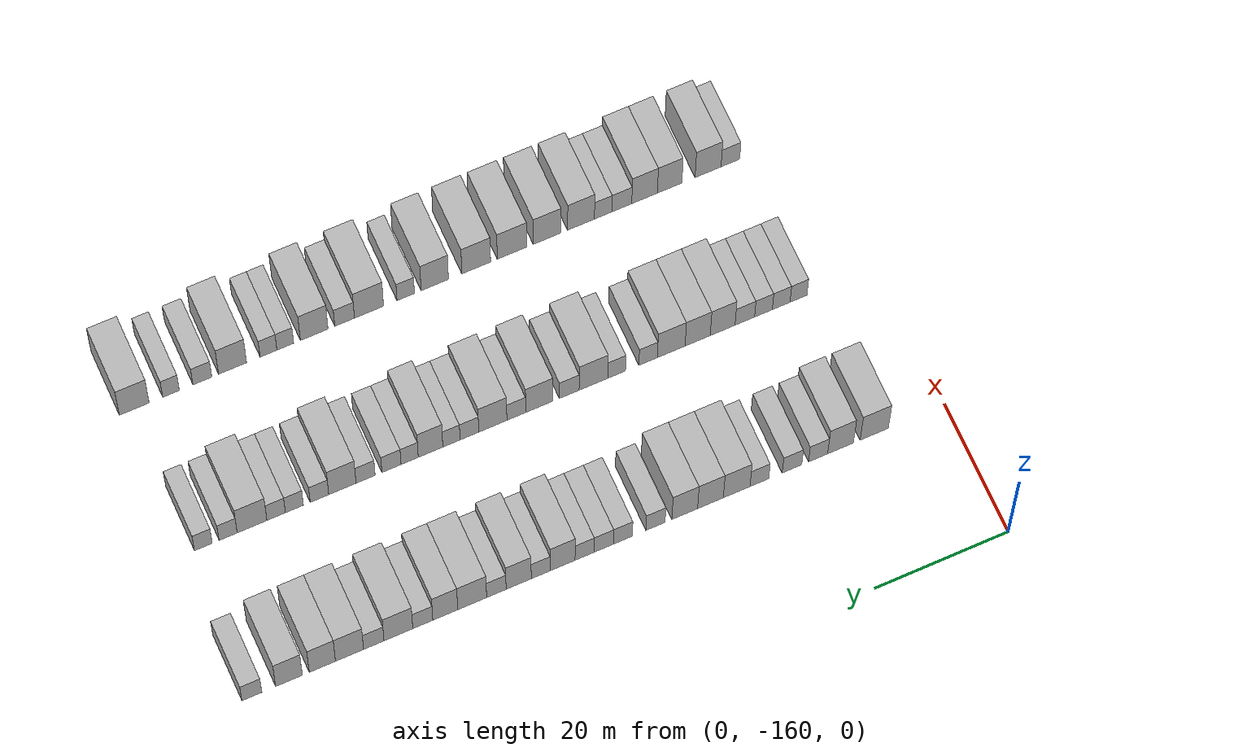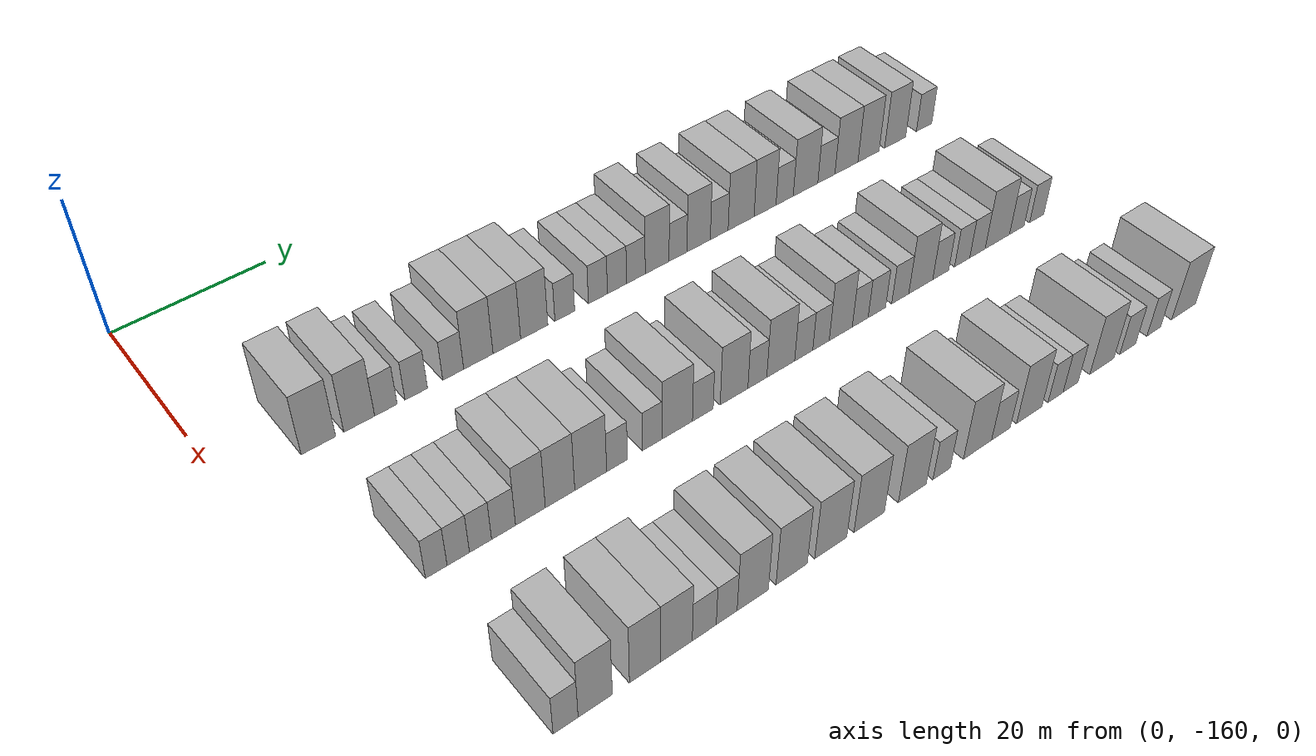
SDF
<sdf version="1.6">
 <world name="default">
  <model name="building_25">
   <static>1</static>
   <pose>25.0000 -149.3242 0 0.000000 0.000000 0.000000</pose>
   <link name="link">
    <pose>0 0 4.50 0 0 0</pose>
    <collision name="collision"><geometry><box><size>10.0000 4.2054 9.0000</size></box></geometry></collision>
    <visual name="visual">
     <cast_shadows>0</cast_shadows>
     <geometry><box><size>10.0000 4.2054 9.0000</size></box></geometry>
     <material>
      <script>
       <uri>model://HANNAS_wall/materials/scripts</uri>
       <uri>model://HANNAS_wall/materials/textures</uri>
       <name>vrc/HANNAS_wall</name>
      </script>
     </material>
    </visual>
   </link>
  </model>
  <model name="building_26">
   <static>1</static>
   <pose>25.0000 -144.2968 0 0.000000 0.000000 0.000000</pose>
   <link name="link">
    <pose>0 0 4.50 0 0 0</pose>
    <collision name="collision"><geometry><box><size>10.0000 3.8493 9.0000</size></box></geometry></collision>
    <visual name="visual">
     <cast_shadows>0</cast_shadows>
     <geometry><box><size>10.0000 3.8493 9.0000</size></box></geometry>
     <material>
      <script>
       <uri>model://HANNAS_wall/materials/scripts</uri>
       <uri>model://HANNAS_wall/materials/textures</uri>
       <name>vrc/HANNAS_wall</name>
      </script>
     </material>
    </visual>
   </link>
  </model>
  <model name="building_27">
   <static>1</static>
   <pose>25.0000 -140.9447 0 0.000000 0.000000 0.000000</pose>
   <link name="link">
    <pose>0 0 3.00 0 0 0</pose>
    <collision name="collision"><geometry><box><size>10.0000 2.8551 6.0000</size></box></geometry></collision>
    <visual name="visual">
     <cast_shadows>0</cast_shadows>
     <geometry><box><size>10.0000 2.8551 6.0000</size></box></geometry>
     <material>
      <script>
       <uri>model://HANNAS_wall/materials/scripts</uri>
       <uri>model://HANNAS_wall/materials/textures</uri>
       <name>vrc/HANNAS_wall</name>
      </script>
     </material>
    </visual>
   </link>
  </model>
  <model name="building_28">
   <static>1</static>
   <pose>25.0000 -137.0602 0 0.000000 0.000000 0.000000</pose>
   <link name="link">
    <pose>0 0 3.00 0 0 0</pose>
    <collision name="collision"><geometry><box><size>10.0000 2.9138 6.0000</size></box></geometry></collision>
    <visual name="visual">
     <cast_shadows>0</cast_shadows>
     <geometry><box><size>10.0000 2.9138 6.0000</size></box></geometry>
     <material>
      <script>
       <uri>model://HANNAS_wall/materials/scripts</uri>
       <uri>model://HANNAS_wall/materials/textures</uri>
       <name>vrc/HANNAS_wall</name>
      </script>
     </material>
    </visual>
   </link>
  </model>
  <model name="building_29">
   <static>1</static>
   <pose>25.0000 -132.2127 0 0.000000 0.000000 0.000000</pose>
   <link name="link">
    <pose>0 0 3.00 0 0 0</pose>
    <collision name="collision"><geometry><box><size>10.0000 2.7813 6.0000</size></box></geometry></collision>
    <visual name="visual">
     <cast_shadows>0</cast_shadows>
     <geometry><box><size>10.0000 2.7813 6.0000</size></box></geometry>
     <material>
      <script>
       <uri>model://HANNAS_wall/materials/scripts</uri>
       <uri>model://HANNAS_wall/materials/textures</uri>
       <name>vrc/HANNAS_wall</name>
      </script>
     </material>
    </visual>
   </link>
  </model>
  <model name="building_30">
   <static>1</static>
   <pose>25.0000 -128.8411 0 0.000000 0.000000 0.000000</pose>
   <link name="link">
    <pose>0 0 4.50 0 0 0</pose>
    <collision name="collision"><geometry><box><size>10.0000 3.9619 9.0000</size></box></geometry></collision>
    <visual name="visual">
     <cast_shadows>0</cast_shadows>
     <geometry><box><size>10.0000 3.9619 9.0000</size></box></geometry>
     <material>
      <script>
       <uri>model://HANNAS_wall/materials/scripts</uri>
       <uri>model://HANNAS_wall/materials/textures</uri>
       <name>vrc/HANNAS_wall</name>
      </script>
     </material>
    </visual>
   </link>
  </model>
  <model name="building_31">
   <static>1</static>
   <pose>25.0000 -124.9556 0 0.000000 0.000000 0.000000</pose>
   <link name="link">
    <pose>0 0 4.50 0 0 0</pose>
    <collision name="collision"><geometry><box><size>10.0000 3.8092 9.0000</size></box></geometry></collision>
    <visual name="visual">
     <cast_shadows>0</cast_shadows>
     <geometry><box><size>10.0000 3.8092 9.0000</size></box></geometry>
     <material>
      <script>
       <uri>model://HANNAS_wall/materials/scripts</uri>
       <uri>model://HANNAS_wall/materials/textures</uri>
       <name>vrc/HANNAS_wall</name>
      </script>
     </material>
    </visual>
   </link>
  </model>
  <model name="building_32">
   <static>1</static>
   <pose>25.0000 -121.1443 0 0.000000 0.000000 0.000000</pose>
   <link name="link">
    <pose>0 0 4.50 0 0 0</pose>
    <collision name="collision"><geometry><box><size>10.0000 3.8134 9.0000</size></box></geometry></collision>
    <visual name="visual">
     <cast_shadows>0</cast_shadows>
     <geometry><box><size>10.0000 3.8134 9.0000</size></box></geometry>
     <material>
      <script>
       <uri>model://HANNAS_wall/materials/scripts</uri>
       <uri>model://HANNAS_wall/materials/textures</uri>
       <name>vrc/HANNAS_wall</name>
      </script>
     </material>
    </visual>
   </link>
  </model>
  <model name="building_33">
   <static>1</static>
   <pose>25.0000 -116.8206 0 0.000000 0.000000 0.000000</pose>
   <link name="link">
    <pose>0 0 3.00 0 0 0</pose>
    <collision name="collision"><geometry><box><size>10.0000 2.8338 6.0000</size></box></geometry></collision>
    <visual name="visual">
     <cast_shadows>0</cast_shadows>
     <geometry><box><size>10.0000 2.8338 6.0000</size></box></geometry>
     <material>
      <script>
       <uri>model://HANNAS_wall/materials/scripts</uri>
       <uri>model://HANNAS_wall/materials/textures</uri>
       <name>vrc/HANNAS_wall</name>
      </script>
     </material>
    </visual>
   </link>
  </model>
  <model name="building_34">
   <static>1</static>
   <pose>25.0000 -112.0106 0 0.000000 0.000000 0.000000</pose>
   <link name="link">
    <pose>0 0 3.00 0 0 0</pose>
    <collision name="collision"><geometry><box><size>10.0000 2.7863 6.0000</size></box></geometry></collision>
    <visual name="visual">
     <cast_shadows>0</cast_shadows>
     <geometry><box><size>10.0000 2.7863 6.0000</size></box></geometry>
     <material>
      <script>
       <uri>model://HANNAS_wall/materials/scripts</uri>
       <uri>model://HANNAS_wall/materials/textures</uri>
       <name>vrc/HANNAS_wall</name>
      </script>
     </material>
    </visual>
   </link>
  </model>
  <model name="building_35">
   <static>1</static>
   <pose>25.0000 -109.1932 0 0.000000 0.000000 0.000000</pose>
   <link name="link">
    <pose>0 0 3.00 0 0 0</pose>
    <collision name="collision"><geometry><box><size>10.0000 2.8485 6.0000</size></box></geometry></collision>
    <visual name="visual">
     <cast_shadows>0</cast_shadows>
     <geometry><box><size>10.0000 2.8485 6.0000</size></box></geometry>
     <material>
      <script>
       <uri>model://HANNAS_wall/materials/scripts</uri>
       <uri>model://HANNAS_wall/materials/textures</uri>
       <name>vrc/HANNAS_wall</name>
      </script>
     </material>
    </visual>
   </link>
  </model>
  <model name="building_36">
   <static>1</static>
   <pose>25.0000 -106.3663 0 0.000000 0.000000 0.000000</pose>
   <link name="link">
    <pose>0 0 3.00 0 0 0</pose>
    <collision name="collision"><geometry><box><size>10.0000 2.8053 6.0000</size></box></geometry></collision>
    <visual name="visual">
     <cast_shadows>0</cast_shadows>
     <geometry><box><size>10.0000 2.8053 6.0000</size></box></geometry>
     <material>
      <script>
       <uri>model://HANNAS_wall/materials/scripts</uri>
       <uri>model://HANNAS_wall/materials/textures</uri>
       <name>vrc/HANNAS_wall</name>
      </script>
     </material>
    </visual>
   </link>
  </model>
  <model name="building_37">
   <static>1</static>
   <pose>25.0000 -103.1372 0 0.000000 0.000000 0.000000</pose>
   <link name="link">
    <pose>0 0 4.50 0 0 0</pose>
    <collision name="collision"><geometry><box><size>10.0000 3.6528 9.0000</size></box></geometry></collision>
    <visual name="visual">
     <cast_shadows>0</cast_shadows>
     <geometry><box><size>10.0000 3.6528 9.0000</size></box></geometry>
     <material>
      <script>
       <uri>model://HANNAS_wall/materials/scripts</uri>
       <uri>model://HANNAS_wall/materials/textures</uri>
       <name>vrc/HANNAS_wall</name>
      </script>
     </material>
    </visual>
   </link>
  </model>
  <model name="building_38">
   <static>1</static>
   <pose>25.0000 -99.9185 0 0.000000 0.000000 0.000000</pose>
   <link name="link">
    <pose>0 0 3.00 0 0 0</pose>
    <collision name="collision"><geometry><box><size>10.0000 2.7847 6.0000</size></box></geometry></collision>
    <visual name="visual">
     <cast_shadows>0</cast_shadows>
     <geometry><box><size>10.0000 2.7847 6.0000</size></box></geometry>
     <material>
      <script>
       <uri>model://HANNAS_wall/materials/scripts</uri>
       <uri>model://HANNAS_wall/materials/textures</uri>
       <name>vrc/HANNAS_wall</name>
      </script>
     </material>
    </visual>
   </link>
  </model>
  <model name="building_39">
   <static>1</static>
   <pose>25.0000 -96.6816 0 0.000000 0.000000 0.000000</pose>
   <link name="link">
    <pose>0 0 4.50 0 0 0</pose>
    <collision name="collision"><geometry><box><size>10.0000 3.6890 9.0000</size></box></geometry></collision>
    <visual name="visual">
     <cast_shadows>0</cast_shadows>
     <geometry><box><size>10.0000 3.6890 9.0000</size></box></geometry>
     <material>
      <script>
       <uri>model://HANNAS_wall/materials/scripts</uri>
       <uri>model://HANNAS_wall/materials/textures</uri>
       <name>vrc/HANNAS_wall</name>
      </script>
     </material>
    </visual>
   </link>
  </model>
  <model name="building_40">
   <static>1</static>
   <pose>25.0000 -93.4122 0 0.000000 0.000000 0.000000</pose>
   <link name="link">
    <pose>0 0 3.00 0 0 0</pose>
    <collision name="collision"><geometry><box><size>10.0000 2.8499 6.0000</size></box></geometry></collision>
    <visual name="visual">
     <cast_shadows>0</cast_shadows>
     <geometry><box><size>10.0000 2.8499 6.0000</size></box></geometry>
     <material>
      <script>
       <uri>model://HANNAS_wall/materials/scripts</uri>
       <uri>model://HANNAS_wall/materials/textures</uri>
       <name>vrc/HANNAS_wall</name>
      </script>
     </material>
    </visual>
   </link>
  </model>
  <model name="building_41">
   <static>1</static>
   <pose>25.0000 -89.8709 0 0.000000 0.000000 0.000000</pose>
   <link name="link">
    <pose>0 0 4.50 0 0 0</pose>
    <collision name="collision"><geometry><box><size>10.0000 4.2328 9.0000</size></box></geometry></collision>
    <visual name="visual">
     <cast_shadows>0</cast_shadows>
     <geometry><box><size>10.0000 4.2328 9.0000</size></box></geometry>
     <material>
      <script>
       <uri>model://HANNAS_wall/materials/scripts</uri>
       <uri>model://HANNAS_wall/materials/textures</uri>
       <name>vrc/HANNAS_wall</name>
      </script>
     </material>
    </visual>
   </link>
  </model>
  <model name="building_42">
   <static>1</static>
   <pose>25.0000 -85.9363 0 0.000000 0.000000 0.000000</pose>
   <link name="link">
    <pose>0 0 4.50 0 0 0</pose>
    <collision name="collision"><geometry><box><size>10.0000 3.6364 9.0000</size></box></geometry></collision>
    <visual name="visual">
     <cast_shadows>0</cast_shadows>
     <geometry><box><size>10.0000 3.6364 9.0000</size></box></geometry>
     <material>
      <script>
       <uri>model://HANNAS_wall/materials/scripts</uri>
       <uri>model://HANNAS_wall/materials/textures</uri>
       <name>vrc/HANNAS_wall</name>
      </script>
     </material>
    </visual>
   </link>
  </model>
  <model name="building_43">
   <static>1</static>
   <pose>25.0000 -82.6606 0 0.000000 0.000000 0.000000</pose>
   <link name="link">
    <pose>0 0 3.00 0 0 0</pose>
    <collision name="collision"><geometry><box><size>10.0000 2.9150 6.0000</size></box></geometry></collision>
    <visual name="visual">
     <cast_shadows>0</cast_shadows>
     <geometry><box><size>10.0000 2.9150 6.0000</size></box></geometry>
     <material>
      <script>
       <uri>model://HANNAS_wall/materials/scripts</uri>
       <uri>model://HANNAS_wall/materials/textures</uri>
       <name>vrc/HANNAS_wall</name>
      </script>
     </material>
    </visual>
   </link>
  </model>
  <model name="building_44">
   <static>1</static>
   <pose>25.0000 -79.1038 0 0.000000 0.000000 0.000000</pose>
   <link name="link">
    <pose>0 0 4.50 0 0 0</pose>
    <collision name="collision"><geometry><box><size>10.0000 4.1987 9.0000</size></box></geometry></collision>
    <visual name="visual">
     <cast_shadows>0</cast_shadows>
     <geometry><box><size>10.0000 4.1987 9.0000</size></box></geometry>
     <material>
      <script>
       <uri>model://HANNAS_wall/materials/scripts</uri>
       <uri>model://HANNAS_wall/materials/textures</uri>
       <name>vrc/HANNAS_wall</name>
      </script>
     </material>
    </visual>
   </link>
  </model>
  <model name="building_45">
   <static>1</static>
   <pose>25.0000 -75.5194 0 0.000000 0.000000 0.000000</pose>
   <link name="link">
    <pose>0 0 3.00 0 0 0</pose>
    <collision name="collision"><geometry><box><size>10.0000 2.9702 6.0000</size></box></geometry></collision>
    <visual name="visual">
     <cast_shadows>0</cast_shadows>
     <geometry><box><size>10.0000 2.9702 6.0000</size></box></geometry>
     <material>
      <script>
       <uri>model://HANNAS_wall/materials/scripts</uri>
       <uri>model://HANNAS_wall/materials/textures</uri>
       <name>vrc/HANNAS_wall</name>
      </script>
     </material>
    </visual>
   </link>
  </model>
  <model name="building_46">
   <static>1</static>
   <pose>25.0000 -71.9935 0 0.000000 0.000000 0.000000</pose>
   <link name="link">
    <pose>0 0 4.50 0 0 0</pose>
    <collision name="collision"><geometry><box><size>10.0000 4.0816 9.0000</size></box></geometry></collision>
    <visual name="visual">
     <cast_shadows>0</cast_shadows>
     <geometry><box><size>10.0000 4.0816 9.0000</size></box></geometry>
     <material>
      <script>
       <uri>model://HANNAS_wall/materials/scripts</uri>
       <uri>model://HANNAS_wall/materials/textures</uri>
       <name>vrc/HANNAS_wall</name>
      </script>
     </material>
    </visual>
   </link>
  </model>
  <model name="building_47">
   <static>1</static>
   <pose>25.0000 -68.0510 0 0.000000 0.000000 0.000000</pose>
   <link name="link">
    <pose>0 0 4.50 0 0 0</pose>
    <collision name="collision"><geometry><box><size>10.0000 3.8034 9.0000</size></box></geometry></collision>
    <visual name="visual">
     <cast_shadows>0</cast_shadows>
     <geometry><box><size>10.0000 3.8034 9.0000</size></box></geometry>
     <material>
      <script>
       <uri>model://HANNAS_wall/materials/scripts</uri>
       <uri>model://HANNAS_wall/materials/textures</uri>
       <name>vrc/HANNAS_wall</name>
      </script>
     </material>
    </visual>
   </link>
  </model>
  <model name="building_48">
   <static>1</static>
   <pose>25.0000 -63.2128 0 0.000000 0.000000 0.000000</pose>
   <link name="link">
    <pose>0 0 4.50 0 0 0</pose>
    <collision name="collision"><geometry><box><size>10.0000 3.8730 9.0000</size></box></geometry></collision>
    <visual name="visual">
     <cast_shadows>0</cast_shadows>
     <geometry><box><size>10.0000 3.8730 9.0000</size></box></geometry>
     <material>
      <script>
       <uri>model://HANNAS_wall/materials/scripts</uri>
       <uri>model://HANNAS_wall/materials/textures</uri>
       <name>vrc/HANNAS_wall</name>
      </script>
     </material>
    </visual>
   </link>
  </model>
  <model name="building_49">
   <static>1</static>
   <pose>25.0000 -57.8368 0 0.000000 0.000000 0.000000</pose>
   <link name="link">
    <pose>0 0 3.00 0 0 0</pose>
    <collision name="collision"><geometry><box><size>10.0000 2.8790 6.0000</size></box></geometry></collision>
    <visual name="visual">
     <cast_shadows>0</cast_shadows>
     <geometry><box><size>10.0000 2.8790 6.0000</size></box></geometry>
     <material>
      <script>
       <uri>model://HANNAS_wall/materials/scripts</uri>
       <uri>model://HANNAS_wall/materials/textures</uri>
       <name>vrc/HANNAS_wall</name>
      </script>
     </material>
    </visual>
   </link>
  </model>
  <model name="building_150">
   <static>1</static>
   <pose>47.0000 -148.1865 0 0.000000 0.000000 0.000000</pose>
   <link name="link">
    <pose>0 0 3.00 0 0 0</pose>
    <collision name="collision"><geometry><box><size>10.0000 2.5449 6.0000</size></box></geometry></collision>
    <visual name="visual">
     <cast_shadows>0</cast_shadows>
     <geometry><box><size>10.0000 2.5449 6.0000</size></box></geometry>
     <material>
      <script>
       <uri>model://HANNAS_wall/materials/scripts</uri>
       <uri>model://HANNAS_wall/materials/textures</uri>
       <name>vrc/HANNAS_wall</name>
      </script>
     </material>
    </visual>
   </link>
  </model>
  <model name="building_151">
   <static>1</static>
   <pose>47.0000 -145.5864 0 0.000000 0.000000 0.000000</pose>
   <link name="link">
    <pose>0 0 3.00 0 0 0</pose>
    <collision name="collision"><geometry><box><size>10.0000 2.6553 6.0000</size></box></geometry></collision>
    <visual name="visual">
     <cast_shadows>0</cast_shadows>
     <geometry><box><size>10.0000 2.6553 6.0000</size></box></geometry>
     <material>
      <script>
       <uri>model://HANNAS_wall/materials/scripts</uri>
       <uri>model://HANNAS_wall/materials/textures</uri>
       <name>vrc/HANNAS_wall</name>
      </script>
     </material>
    </visual>
   </link>
  </model>
  <model name="building_152">
   <static>1</static>
   <pose>47.0000 -142.9278 0 0.000000 0.000000 0.000000</pose>
   <link name="link">
    <pose>0 0 3.00 0 0 0</pose>
    <collision name="collision"><geometry><box><size>10.0000 2.6617 6.0000</size></box></geometry></collision>
    <visual name="visual">
     <cast_shadows>0</cast_shadows>
     <geometry><box><size>10.0000 2.6617 6.0000</size></box></geometry>
     <material>
      <script>
       <uri>model://HANNAS_wall/materials/scripts</uri>
       <uri>model://HANNAS_wall/materials/textures</uri>
       <name>vrc/HANNAS_wall</name>
      </script>
     </material>
    </visual>
   </link>
  </model>
  <model name="building_153">
   <static>1</static>
   <pose>47.0000 -140.1279 0 0.000000 0.000000 0.000000</pose>
   <link name="link">
    <pose>0 0 3.00 0 0 0</pose>
    <collision name="collision"><geometry><box><size>10.0000 2.9380 6.0000</size></box></geometry></collision>
    <visual name="visual">
     <cast_shadows>0</cast_shadows>
     <geometry><box><size>10.0000 2.9380 6.0000</size></box></geometry>
     <material>
      <script>
       <uri>model://HANNAS_wall/materials/scripts</uri>
       <uri>model://HANNAS_wall/materials/textures</uri>
       <name>vrc/HANNAS_wall</name>
      </script>
     </material>
    </visual>
   </link>
  </model>
  <model name="building_154">
   <static>1</static>
   <pose>47.0000 -136.7993 0 0.000000 0.000000 0.000000</pose>
   <link name="link">
    <pose>0 0 4.50 0 0 0</pose>
    <collision name="collision"><geometry><box><size>10.0000 3.7192 9.0000</size></box></geometry></collision>
    <visual name="visual">
     <cast_shadows>0</cast_shadows>
     <geometry><box><size>10.0000 3.7192 9.0000</size></box></geometry>
     <material>
      <script>
       <uri>model://HANNAS_wall/materials/scripts</uri>
       <uri>model://HANNAS_wall/materials/textures</uri>
       <name>vrc/HANNAS_wall</name>
      </script>
     </material>
    </visual>
   </link>
  </model>
  <model name="building_155">
   <static>1</static>
   <pose>47.0000 -133.0624 0 0.000000 0.000000 0.000000</pose>
   <link name="link">
    <pose>0 0 4.50 0 0 0</pose>
    <collision name="collision"><geometry><box><size>10.0000 3.7546 9.0000</size></box></geometry></collision>
    <visual name="visual">
     <cast_shadows>0</cast_shadows>
     <geometry><box><size>10.0000 3.7546 9.0000</size></box></geometry>
     <material>
      <script>
       <uri>model://HANNAS_wall/materials/scripts</uri>
       <uri>model://HANNAS_wall/materials/textures</uri>
       <name>vrc/HANNAS_wall</name>
      </script>
     </material>
    </visual>
   </link>
  </model>
  <model name="building_156">
   <static>1</static>
   <pose>47.0000 -129.1072 0 0.000000 0.000000 0.000000</pose>
   <link name="link">
    <pose>0 0 4.50 0 0 0</pose>
    <collision name="collision"><geometry><box><size>10.0000 4.1558 9.0000</size></box></geometry></collision>
    <visual name="visual">
     <cast_shadows>0</cast_shadows>
     <geometry><box><size>10.0000 4.1558 9.0000</size></box></geometry>
     <material>
      <script>
       <uri>model://HANNAS_wall/materials/scripts</uri>
       <uri>model://HANNAS_wall/materials/textures</uri>
       <name>vrc/HANNAS_wall</name>
      </script>
     </material>
    </visual>
   </link>
  </model>
  <model name="building_157">
   <static>1</static>
   <pose>47.0000 -125.6549 0 0.000000 0.000000 0.000000</pose>
   <link name="link">
    <pose>0 0 3.00 0 0 0</pose>
    <collision name="collision"><geometry><box><size>10.0000 2.7489 6.0000</size></box></geometry></collision>
    <visual name="visual">
     <cast_shadows>0</cast_shadows>
     <geometry><box><size>10.0000 2.7489 6.0000</size></box></geometry>
     <material>
      <script>
       <uri>model://HANNAS_wall/materials/scripts</uri>
       <uri>model://HANNAS_wall/materials/textures</uri>
       <name>vrc/HANNAS_wall</name>
      </script>
     </material>
    </visual>
   </link>
  </model>
  <model name="building_158">
   <static>1</static>
   <pose>47.0000 -120.9511 0 0.000000 0.000000 0.000000</pose>
   <link name="link">
    <pose>0 0 3.00 0 0 0</pose>
    <collision name="collision"><geometry><box><size>10.0000 2.6586 6.0000</size></box></geometry></collision>
    <visual name="visual">
     <cast_shadows>0</cast_shadows>
     <geometry><box><size>10.0000 2.6586 6.0000</size></box></geometry>
     <material>
      <script>
       <uri>model://HANNAS_wall/materials/scripts</uri>
       <uri>model://HANNAS_wall/materials/textures</uri>
       <name>vrc/HANNAS_wall</name>
      </script>
     </material>
    </visual>
   </link>
  </model>
  <model name="building_159">
   <static>1</static>
   <pose>47.0000 -117.5004 0 0.000000 0.000000 0.000000</pose>
   <link name="link">
    <pose>0 0 4.50 0 0 0</pose>
    <collision name="collision"><geometry><box><size>10.0000 4.2429 9.0000</size></box></geometry></collision>
    <visual name="visual">
     <cast_shadows>0</cast_shadows>
     <geometry><box><size>10.0000 4.2429 9.0000</size></box></geometry>
     <material>
      <script>
       <uri>model://HANNAS_wall/materials/scripts</uri>
       <uri>model://HANNAS_wall/materials/textures</uri>
       <name>vrc/HANNAS_wall</name>
      </script>
     </material>
    </visual>
   </link>
  </model>
  <model name="building_160">
   <static>1</static>
   <pose>47.0000 -113.9133 0 0.000000 0.000000 0.000000</pose>
   <link name="link">
    <pose>0 0 3.00 0 0 0</pose>
    <collision name="collision"><geometry><box><size>10.0000 2.9313 6.0000</size></box></geometry></collision>
    <visual name="visual">
     <cast_shadows>0</cast_shadows>
     <geometry><box><size>10.0000 2.9313 6.0000</size></box></geometry>
     <material>
      <script>
       <uri>model://HANNAS_wall/materials/scripts</uri>
       <uri>model://HANNAS_wall/materials/textures</uri>
       <name>vrc/HANNAS_wall</name>
      </script>
     </material>
    </visual>
   </link>
  </model>
  <model name="building_161">
   <static>1</static>
   <pose>47.0000 -109.4440 0 0.000000 0.000000 0.000000</pose>
   <link name="link">
    <pose>0 0 4.50 0 0 0</pose>
    <collision name="collision"><geometry><box><size>10.0000 4.0073 9.0000</size></box></geometry></collision>
    <visual name="visual">
     <cast_shadows>0</cast_shadows>
     <geometry><box><size>10.0000 4.0073 9.0000</size></box></geometry>
     <material>
      <script>
       <uri>model://HANNAS_wall/materials/scripts</uri>
       <uri>model://HANNAS_wall/materials/textures</uri>
       <name>vrc/HANNAS_wall</name>
      </script>
     </material>
    </visual>
   </link>
  </model>
  <model name="building_162">
   <static>1</static>
   <pose>47.0000 -106.0488 0 0.000000 0.000000 0.000000</pose>
   <link name="link">
    <pose>0 0 3.00 0 0 0</pose>
    <collision name="collision"><geometry><box><size>10.0000 2.7831 6.0000</size></box></geometry></collision>
    <visual name="visual">
     <cast_shadows>0</cast_shadows>
     <geometry><box><size>10.0000 2.7831 6.0000</size></box></geometry>
     <material>
      <script>
       <uri>model://HANNAS_wall/materials/scripts</uri>
       <uri>model://HANNAS_wall/materials/textures</uri>
       <name>vrc/HANNAS_wall</name>
      </script>
     </material>
    </visual>
   </link>
  </model>
  <model name="building_163">
   <static>1</static>
   <pose>47.0000 -102.5712 0 0.000000 0.000000 0.000000</pose>
   <link name="link">
    <pose>0 0 4.50 0 0 0</pose>
    <collision name="collision"><geometry><box><size>10.0000 4.1719 9.0000</size></box></geometry></collision>
    <visual name="visual">
     <cast_shadows>0</cast_shadows>
     <geometry><box><size>10.0000 4.1719 9.0000</size></box></geometry>
     <material>
      <script>
       <uri>model://HANNAS_wall/materials/scripts</uri>
       <uri>model://HANNAS_wall/materials/textures</uri>
       <name>vrc/HANNAS_wall</name>
      </script>
     </material>
    </visual>
   </link>
  </model>
  <model name="building_164">
   <static>1</static>
   <pose>47.0000 -99.1052 0 0.000000 0.000000 0.000000</pose>
   <link name="link">
    <pose>0 0 3.00 0 0 0</pose>
    <collision name="collision"><geometry><box><size>10.0000 2.7602 6.0000</size></box></geometry></collision>
    <visual name="visual">
     <cast_shadows>0</cast_shadows>
     <geometry><box><size>10.0000 2.7602 6.0000</size></box></geometry>
     <material>
      <script>
       <uri>model://HANNAS_wall/materials/scripts</uri>
       <uri>model://HANNAS_wall/materials/textures</uri>
       <name>vrc/HANNAS_wall</name>
      </script>
     </material>
    </visual>
   </link>
  </model>
  <model name="building_165">
   <static>1</static>
   <pose>47.0000 -96.4536 0 0.000000 0.000000 0.000000</pose>
   <link name="link">
    <pose>0 0 3.00 0 0 0</pose>
    <collision name="collision"><geometry><box><size>10.0000 2.5429 6.0000</size></box></geometry></collision>
    <visual name="visual">
     <cast_shadows>0</cast_shadows>
     <geometry><box><size>10.0000 2.5429 6.0000</size></box></geometry>
     <material>
      <script>
       <uri>model://HANNAS_wall/materials/scripts</uri>
       <uri>model://HANNAS_wall/materials/textures</uri>
       <name>vrc/HANNAS_wall</name>
      </script>
     </material>
    </visual>
   </link>
  </model>
  <model name="building_166">
   <static>1</static>
   <pose>47.0000 -93.3715 0 0.000000 0.000000 0.000000</pose>
   <link name="link">
    <pose>0 0 4.50 0 0 0</pose>
    <collision name="collision"><geometry><box><size>10.0000 3.6214 9.0000</size></box></geometry></collision>
    <visual name="visual">
     <cast_shadows>0</cast_shadows>
     <geometry><box><size>10.0000 3.6214 9.0000</size></box></geometry>
     <material>
      <script>
       <uri>model://HANNAS_wall/materials/scripts</uri>
       <uri>model://HANNAS_wall/materials/textures</uri>
       <name>vrc/HANNAS_wall</name>
      </script>
     </material>
    </visual>
   </link>
  </model>
  <model name="building_167">
   <static>1</static>
   <pose>47.0000 -90.2958 0 0.000000 0.000000 0.000000</pose>
   <link name="link">
    <pose>0 0 3.00 0 0 0</pose>
    <collision name="collision"><geometry><box><size>10.0000 2.5300 6.0000</size></box></geometry></collision>
    <visual name="visual">
     <cast_shadows>0</cast_shadows>
     <geometry><box><size>10.0000 2.5300 6.0000</size></box></geometry>
     <material>
      <script>
       <uri>model://HANNAS_wall/materials/scripts</uri>
       <uri>model://HANNAS_wall/materials/textures</uri>
       <name>vrc/HANNAS_wall</name>
      </script>
     </material>
    </visual>
   </link>
  </model>
  <model name="building_168">
   <static>1</static>
   <pose>47.0000 -87.6217 0 0.000000 0.000000 0.000000</pose>
   <link name="link">
    <pose>0 0 3.00 0 0 0</pose>
    <collision name="collision"><geometry><box><size>10.0000 2.8183 6.0000</size></box></geometry></collision>
    <visual name="visual">
     <cast_shadows>0</cast_shadows>
     <geometry><box><size>10.0000 2.8183 6.0000</size></box></geometry>
     <material>
      <script>
       <uri>model://HANNAS_wall/materials/scripts</uri>
       <uri>model://HANNAS_wall/materials/textures</uri>
       <name>vrc/HANNAS_wall</name>
      </script>
     </material>
    </visual>
   </link>
  </model>
  <model name="building_169">
   <static>1</static>
   <pose>47.0000 -83.8090 0 0.000000 0.000000 0.000000</pose>
   <link name="link">
    <pose>0 0 3.00 0 0 0</pose>
    <collision name="collision"><geometry><box><size>10.0000 2.8070 6.0000</size></box></geometry></collision>
    <visual name="visual">
     <cast_shadows>0</cast_shadows>
     <geometry><box><size>10.0000 2.8070 6.0000</size></box></geometry>
     <material>
      <script>
       <uri>model://HANNAS_wall/materials/scripts</uri>
       <uri>model://HANNAS_wall/materials/textures</uri>
       <name>vrc/HANNAS_wall</name>
      </script>
     </material>
    </visual>
   </link>
  </model>
  <model name="building_170">
   <static>1</static>
   <pose>47.0000 -80.4004 0 0.000000 0.000000 0.000000</pose>
   <link name="link">
    <pose>0 0 4.50 0 0 0</pose>
    <collision name="collision"><geometry><box><size>10.0000 4.0101 9.0000</size></box></geometry></collision>
    <visual name="visual">
     <cast_shadows>0</cast_shadows>
     <geometry><box><size>10.0000 4.0101 9.0000</size></box></geometry>
     <material>
      <script>
       <uri>model://HANNAS_wall/materials/scripts</uri>
       <uri>model://HANNAS_wall/materials/textures</uri>
       <name>vrc/HANNAS_wall</name>
      </script>
     </material>
    </visual>
   </link>
  </model>
  <model name="building_171">
   <static>1</static>
   <pose>47.0000 -77.0378 0 0.000000 0.000000 0.000000</pose>
   <link name="link">
    <pose>0 0 3.00 0 0 0</pose>
    <collision name="collision"><geometry><box><size>10.0000 2.7151 6.0000</size></box></geometry></collision>
    <visual name="visual">
     <cast_shadows>0</cast_shadows>
     <geometry><box><size>10.0000 2.7151 6.0000</size></box></geometry>
     <material>
      <script>
       <uri>model://HANNAS_wall/materials/scripts</uri>
       <uri>model://HANNAS_wall/materials/textures</uri>
       <name>vrc/HANNAS_wall</name>
      </script>
     </material>
    </visual>
   </link>
  </model>
  <model name="building_172">
   <static>1</static>
   <pose>47.0000 -73.3644 0 0.000000 0.000000 0.000000</pose>
   <link name="link">
    <pose>0 0 3.00 0 0 0</pose>
    <collision name="collision"><geometry><box><size>10.0000 2.6318 6.0000</size></box></geometry></collision>
    <visual name="visual">
     <cast_shadows>0</cast_shadows>
     <geometry><box><size>10.0000 2.6318 6.0000</size></box></geometry>
     <material>
      <script>
       <uri>model://HANNAS_wall/materials/scripts</uri>
       <uri>model://HANNAS_wall/materials/textures</uri>
       <name>vrc/HANNAS_wall</name>
      </script>
     </material>
    </visual>
   </link>
  </model>
  <model name="building_173">
   <static>1</static>
   <pose>47.0000 -70.6945 0 0.000000 0.000000 0.000000</pose>
   <link name="link">
    <pose>0 0 3.00 0 0 0</pose>
    <collision name="collision"><geometry><box><size>10.0000 2.7079 6.0000</size></box></geometry></collision>
    <visual name="visual">
     <cast_shadows>0</cast_shadows>
     <geometry><box><size>10.0000 2.7079 6.0000</size></box></geometry>
     <material>
      <script>
       <uri>model://HANNAS_wall/materials/scripts</uri>
       <uri>model://HANNAS_wall/materials/textures</uri>
       <name>vrc/HANNAS_wall</name>
      </script>
     </material>
    </visual>
   </link>
  </model>
  <model name="building_174">
   <static>1</static>
   <pose>47.0000 -67.1705 0 0.000000 0.000000 0.000000</pose>
   <link name="link">
    <pose>0 0 4.50 0 0 0</pose>
    <collision name="collision"><geometry><box><size>10.0000 4.3402 9.0000</size></box></geometry></collision>
    <visual name="visual">
     <cast_shadows>0</cast_shadows>
     <geometry><box><size>10.0000 4.3402 9.0000</size></box></geometry>
     <material>
      <script>
       <uri>model://HANNAS_wall/materials/scripts</uri>
       <uri>model://HANNAS_wall/materials/textures</uri>
       <name>vrc/HANNAS_wall</name>
      </script>
     </material>
    </visual>
   </link>
  </model>
  <model name="building_175">
   <static>1</static>
   <pose>47.0000 -63.6809 0 0.000000 0.000000 0.000000</pose>
   <link name="link">
    <pose>0 0 3.00 0 0 0</pose>
    <collision name="collision"><geometry><box><size>10.0000 2.6391 6.0000</size></box></geometry></collision>
    <visual name="visual">
     <cast_shadows>0</cast_shadows>
     <geometry><box><size>10.0000 2.6391 6.0000</size></box></geometry>
     <material>
      <script>
       <uri>model://HANNAS_wall/materials/scripts</uri>
       <uri>model://HANNAS_wall/materials/textures</uri>
       <name>vrc/HANNAS_wall</name>
      </script>
     </material>
    </visual>
   </link>
  </model>
  <model name="building_176">
   <static>1</static>
   <pose>47.0000 -60.0600 0 0.000000 0.000000 0.000000</pose>
   <link name="link">
    <pose>0 0 3.00 0 0 0</pose>
    <collision name="collision"><geometry><box><size>10.0000 2.6027 6.0000</size></box></geometry></collision>
    <visual name="visual">
     <cast_shadows>0</cast_shadows>
     <geometry><box><size>10.0000 2.6027 6.0000</size></box></geometry>
     <material>
      <script>
       <uri>model://HANNAS_wall/materials/scripts</uri>
       <uri>model://HANNAS_wall/materials/textures</uri>
       <name>vrc/HANNAS_wall</name>
      </script>
     </material>
    </visual>
   </link>
  </model>
  <model name="building_269">
   <static>1</static>
   <pose>69.0000 -148.0130 0 0.000000 0.000000 0.000000</pose>
   <link name="link">
    <pose>0 0 3.00 0 0 0</pose>
    <collision name="collision"><geometry><box><size>10.0000 2.8246 6.0000</size></box></geometry></collision>
    <visual name="visual">
     <cast_shadows>0</cast_shadows>
     <geometry><box><size>10.0000 2.8246 6.0000</size></box></geometry>
     <material>
      <script>
       <uri>model://HANNAS_wall/materials/scripts</uri>
       <uri>model://HANNAS_wall/materials/textures</uri>
       <name>vrc/HANNAS_wall</name>
      </script>
     </material>
    </visual>
   </link>
  </model>
  <model name="building_270">
   <static>1</static>
   <pose>69.0000 -144.6373 0 0.000000 0.000000 0.000000</pose>
   <link name="link">
    <pose>0 0 4.50 0 0 0</pose>
    <collision name="collision"><geometry><box><size>10.0000 3.9268 9.0000</size></box></geometry></collision>
    <visual name="visual">
     <cast_shadows>0</cast_shadows>
     <geometry><box><size>10.0000 3.9268 9.0000</size></box></geometry>
     <material>
      <script>
       <uri>model://HANNAS_wall/materials/scripts</uri>
       <uri>model://HANNAS_wall/materials/textures</uri>
       <name>vrc/HANNAS_wall</name>
      </script>
     </material>
    </visual>
   </link>
  </model>
  <model name="building_271">
   <static>1</static>
   <pose>69.0000 -138.8225 0 0.000000 0.000000 0.000000</pose>
   <link name="link">
    <pose>0 0 4.50 0 0 0</pose>
    <collision name="collision"><geometry><box><size>10.0000 3.7029 9.0000</size></box></geometry></collision>
    <visual name="visual">
     <cast_shadows>0</cast_shadows>
     <geometry><box><size>10.0000 3.7029 9.0000</size></box></geometry>
     <material>
      <script>
       <uri>model://HANNAS_wall/materials/scripts</uri>
       <uri>model://HANNAS_wall/materials/textures</uri>
       <name>vrc/HANNAS_wall</name>
      </script>
     </material>
    </visual>
   </link>
  </model>
  <model name="building_272">
   <static>1</static>
   <pose>69.0000 -135.0409 0 0.000000 0.000000 0.000000</pose>
   <link name="link">
    <pose>0 0 4.50 0 0 0</pose>
    <collision name="collision"><geometry><box><size>10.0000 3.8604 9.0000</size></box></geometry></collision>
    <visual name="visual">
     <cast_shadows>0</cast_shadows>
     <geometry><box><size>10.0000 3.8604 9.0000</size></box></geometry>
     <material>
      <script>
       <uri>model://HANNAS_wall/materials/scripts</uri>
       <uri>model://HANNAS_wall/materials/textures</uri>
       <name>vrc/HANNAS_wall</name>
      </script>
     </material>
    </visual>
   </link>
  </model>
  <model name="building_273">
   <static>1</static>
   <pose>69.0000 -131.6170 0 0.000000 0.000000 0.000000</pose>
   <link name="link">
    <pose>0 0 3.00 0 0 0</pose>
    <collision name="collision"><geometry><box><size>10.0000 2.9873 6.0000</size></box></geometry></collision>
    <visual name="visual">
     <cast_shadows>0</cast_shadows>
     <geometry><box><size>10.0000 2.9873 6.0000</size></box></geometry>
     <material>
      <script>
       <uri>model://HANNAS_wall/materials/scripts</uri>
       <uri>model://HANNAS_wall/materials/textures</uri>
       <name>vrc/HANNAS_wall</name>
      </script>
     </material>
    </visual>
   </link>
  </model>
  <model name="building_274">
   <static>1</static>
   <pose>69.0000 -128.8087 0 0.000000 0.000000 0.000000</pose>
   <link name="link">
    <pose>0 0 3.00 0 0 0</pose>
    <collision name="collision"><geometry><box><size>10.0000 2.6293 6.0000</size></box></geometry></collision>
    <visual name="visual">
     <cast_shadows>0</cast_shadows>
     <geometry><box><size>10.0000 2.6293 6.0000</size></box></geometry>
     <material>
      <script>
       <uri>model://HANNAS_wall/materials/scripts</uri>
       <uri>model://HANNAS_wall/materials/textures</uri>
       <name>vrc/HANNAS_wall</name>
      </script>
     </material>
    </visual>
   </link>
  </model>
  <model name="building_275">
   <static>1</static>
   <pose>69.0000 -125.4784 0 0.000000 0.000000 0.000000</pose>
   <link name="link">
    <pose>0 0 4.50 0 0 0</pose>
    <collision name="collision"><geometry><box><size>10.0000 4.0312 9.0000</size></box></geometry></collision>
    <visual name="visual">
     <cast_shadows>0</cast_shadows>
     <geometry><box><size>10.0000 4.0312 9.0000</size></box></geometry>
     <material>
      <script>
       <uri>model://HANNAS_wall/materials/scripts</uri>
       <uri>model://HANNAS_wall/materials/textures</uri>
       <name>vrc/HANNAS_wall</name>
      </script>
     </material>
    </visual>
   </link>
  </model>
  <model name="building_276">
   <static>1</static>
   <pose>69.0000 -120.3869 0 0.000000 0.000000 0.000000</pose>
   <link name="link">
    <pose>0 0 4.50 0 0 0</pose>
    <collision name="collision"><geometry><box><size>10.0000 4.1518 9.0000</size></box></geometry></collision>
    <visual name="visual">
     <cast_shadows>0</cast_shadows>
     <geometry><box><size>10.0000 4.1518 9.0000</size></box></geometry>
     <material>
      <script>
       <uri>model://HANNAS_wall/materials/scripts</uri>
       <uri>model://HANNAS_wall/materials/textures</uri>
       <name>vrc/HANNAS_wall</name>
      </script>
     </material>
    </visual>
   </link>
  </model>
  <model name="building_277">
   <static>1</static>
   <pose>69.0000 -115.1171 0 0.000000 0.000000 0.000000</pose>
   <link name="link">
    <pose>0 0 4.50 0 0 0</pose>
    <collision name="collision"><geometry><box><size>10.0000 4.3879 9.0000</size></box></geometry></collision>
    <visual name="visual">
     <cast_shadows>0</cast_shadows>
     <geometry><box><size>10.0000 4.3879 9.0000</size></box></geometry>
     <material>
      <script>
       <uri>model://HANNAS_wall/materials/scripts</uri>
       <uri>model://HANNAS_wall/materials/textures</uri>
       <name>vrc/HANNAS_wall</name>
      </script>
     </material>
    </visual>
   </link>
  </model>
  <model name="building_278">
   <static>1</static>
   <pose>69.0000 -109.7751 0 0.000000 0.000000 0.000000</pose>
   <link name="link">
    <pose>0 0 4.50 0 0 0</pose>
    <collision name="collision"><geometry><box><size>10.0000 4.2962 9.0000</size></box></geometry></collision>
    <visual name="visual">
     <cast_shadows>0</cast_shadows>
     <geometry><box><size>10.0000 4.2962 9.0000</size></box></geometry>
     <material>
      <script>
       <uri>model://HANNAS_wall/materials/scripts</uri>
       <uri>model://HANNAS_wall/materials/textures</uri>
       <name>vrc/HANNAS_wall</name>
      </script>
     </material>
    </visual>
   </link>
  </model>
  <model name="building_279">
   <static>1</static>
   <pose>69.0000 -103.5911 0 0.000000 0.000000 0.000000</pose>
   <link name="link">
    <pose>0 0 4.50 0 0 0</pose>
    <collision name="collision"><geometry><box><size>10.0000 4.0719 9.0000</size></box></geometry></collision>
    <visual name="visual">
     <cast_shadows>0</cast_shadows>
     <geometry><box><size>10.0000 4.0719 9.0000</size></box></geometry>
     <material>
      <script>
       <uri>model://HANNAS_wall/materials/scripts</uri>
       <uri>model://HANNAS_wall/materials/textures</uri>
       <name>vrc/HANNAS_wall</name>
      </script>
     </material>
    </visual>
   </link>
  </model>
  <model name="building_280">
   <static>1</static>
   <pose>69.0000 -99.2592 0 0.000000 0.000000 0.000000</pose>
   <link name="link">
    <pose>0 0 3.00 0 0 0</pose>
    <collision name="collision"><geometry><box><size>10.0000 2.5920 6.0000</size></box></geometry></collision>
    <visual name="visual">
     <cast_shadows>0</cast_shadows>
     <geometry><box><size>10.0000 2.5920 6.0000</size></box></geometry>
     <material>
      <script>
       <uri>model://HANNAS_wall/materials/scripts</uri>
       <uri>model://HANNAS_wall/materials/textures</uri>
       <name>vrc/HANNAS_wall</name>
      </script>
     </material>
    </visual>
   </link>
  </model>
  <model name="building_281">
   <static>1</static>
   <pose>69.0000 -93.7989 0 0.000000 0.000000 0.000000</pose>
   <link name="link">
    <pose>0 0 4.50 0 0 0</pose>
    <collision name="collision"><geometry><box><size>10.0000 4.3286 9.0000</size></box></geometry></collision>
    <visual name="visual">
     <cast_shadows>0</cast_shadows>
     <geometry><box><size>10.0000 4.3286 9.0000</size></box></geometry>
     <material>
      <script>
       <uri>model://HANNAS_wall/materials/scripts</uri>
       <uri>model://HANNAS_wall/materials/textures</uri>
       <name>vrc/HANNAS_wall</name>
      </script>
     </material>
    </visual>
   </link>
  </model>
  <model name="building_282">
   <static>1</static>
   <pose>69.0000 -90.1735 0 0.000000 0.000000 0.000000</pose>
   <link name="link">
    <pose>0 0 3.00 0 0 0</pose>
    <collision name="collision"><geometry><box><size>10.0000 2.9222 6.0000</size></box></geometry></collision>
    <visual name="visual">
     <cast_shadows>0</cast_shadows>
     <geometry><box><size>10.0000 2.9222 6.0000</size></box></geometry>
     <material>
      <script>
       <uri>model://HANNAS_wall/materials/scripts</uri>
       <uri>model://HANNAS_wall/materials/textures</uri>
       <name>vrc/HANNAS_wall</name>
      </script>
     </material>
    </visual>
   </link>
  </model>
  <model name="building_283">
   <static>1</static>
   <pose>69.0000 -85.6662 0 0.000000 0.000000 0.000000</pose>
   <link name="link">
    <pose>0 0 4.50 0 0 0</pose>
    <collision name="collision"><geometry><box><size>10.0000 4.0923 9.0000</size></box></geometry></collision>
    <visual name="visual">
     <cast_shadows>0</cast_shadows>
     <geometry><box><size>10.0000 4.0923 9.0000</size></box></geometry>
     <material>
      <script>
       <uri>model://HANNAS_wall/materials/scripts</uri>
       <uri>model://HANNAS_wall/materials/textures</uri>
       <name>vrc/HANNAS_wall</name>
      </script>
     </material>
    </visual>
   </link>
  </model>
  <model name="building_284">
   <static>1</static>
   <pose>69.0000 -81.3827 0 0.000000 0.000000 0.000000</pose>
   <link name="link">
    <pose>0 0 3.00 0 0 0</pose>
    <collision name="collision"><geometry><box><size>10.0000 2.4747 6.0000</size></box></geometry></collision>
    <visual name="visual">
     <cast_shadows>0</cast_shadows>
     <geometry><box><size>10.0000 2.4747 6.0000</size></box></geometry>
     <material>
      <script>
       <uri>model://HANNAS_wall/materials/scripts</uri>
       <uri>model://HANNAS_wall/materials/textures</uri>
       <name>vrc/HANNAS_wall</name>
      </script>
     </material>
    </visual>
   </link>
  </model>
  <model name="building_285">
   <static>1</static>
   <pose>69.0000 -78.9036 0 0.000000 0.000000 0.000000</pose>
   <link name="link">
    <pose>0 0 3.00 0 0 0</pose>
    <collision name="collision"><geometry><box><size>10.0000 2.4836 6.0000</size></box></geometry></collision>
    <visual name="visual">
     <cast_shadows>0</cast_shadows>
     <geometry><box><size>10.0000 2.4836 6.0000</size></box></geometry>
     <material>
      <script>
       <uri>model://HANNAS_wall/materials/scripts</uri>
       <uri>model://HANNAS_wall/materials/textures</uri>
       <name>vrc/HANNAS_wall</name>
      </script>
     </material>
    </visual>
   </link>
  </model>
  <model name="building_286">
   <static>1</static>
   <pose>69.0000 -73.5982 0 0.000000 0.000000 0.000000</pose>
   <link name="link">
    <pose>0 0 4.50 0 0 0</pose>
    <collision name="collision"><geometry><box><size>10.0000 4.1273 9.0000</size></box></geometry></collision>
    <visual name="visual">
     <cast_shadows>0</cast_shadows>
     <geometry><box><size>10.0000 4.1273 9.0000</size></box></geometry>
     <material>
      <script>
       <uri>model://HANNAS_wall/materials/scripts</uri>
       <uri>model://HANNAS_wall/materials/textures</uri>
       <name>vrc/HANNAS_wall</name>
      </script>
     </material>
    </visual>
   </link>
  </model>
  <model name="building_287">
   <static>1</static>
   <pose>69.0000 -69.1467 0 0.000000 0.000000 0.000000</pose>
   <link name="link">
    <pose>0 0 3.00 0 0 0</pose>
    <collision name="collision"><geometry><box><size>10.0000 2.7757 6.0000</size></box></geometry></collision>
    <visual name="visual">
     <cast_shadows>0</cast_shadows>
     <geometry><box><size>10.0000 2.7757 6.0000</size></box></geometry>
     <material>
      <script>
       <uri>model://HANNAS_wall/materials/scripts</uri>
       <uri>model://HANNAS_wall/materials/textures</uri>
       <name>vrc/HANNAS_wall</name>
      </script>
     </material>
    </visual>
   </link>
  </model>
  <model name="building_288">
   <static>1</static>
   <pose>69.0000 -64.5370 0 0.000000 0.000000 0.000000</pose>
   <link name="link">
    <pose>0 0 3.00 0 0 0</pose>
    <collision name="collision"><geometry><box><size>10.0000 2.4439 6.0000</size></box></geometry></collision>
    <visual name="visual">
     <cast_shadows>0</cast_shadows>
     <geometry><box><size>10.0000 2.4439 6.0000</size></box></geometry>
     <material>
      <script>
       <uri>model://HANNAS_wall/materials/scripts</uri>
       <uri>model://HANNAS_wall/materials/textures</uri>
       <name>vrc/HANNAS_wall</name>
      </script>
     </material>
    </visual>
   </link>
  </model>
  <model name="building_289">
   <static>1</static>
   <pose>69.0000 -59.1258 0 0.000000 0.000000 0.000000</pose>
   <link name="link">
    <pose>0 0 4.50 0 0 0</pose>
    <collision name="collision"><geometry><box><size>10.0000 4.3785 9.0000</size></box></geometry></collision>
    <visual name="visual">
     <cast_shadows>0</cast_shadows>
     <geometry><box><size>10.0000 4.3785 9.0000</size></box></geometry>
     <material>
      <script>
       <uri>model://HANNAS_wall/materials/scripts</uri>
       <uri>model://HANNAS_wall/materials/textures</uri>
       <name>vrc/HANNAS_wall</name>
      </script>
     </material>
    </visual>
   </link>
  </model>
 </world>
</sdf>
